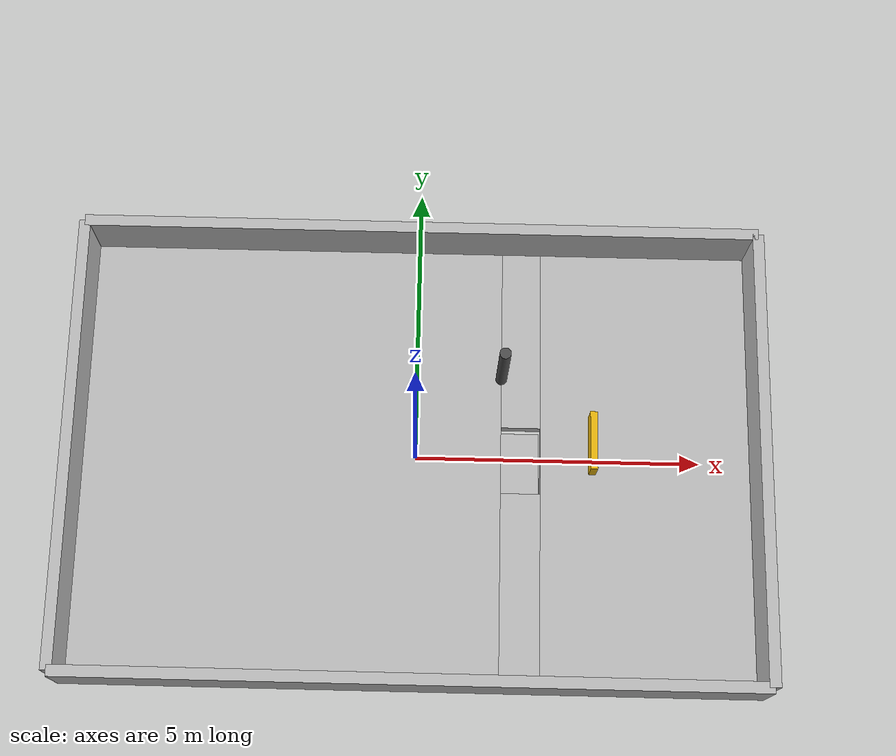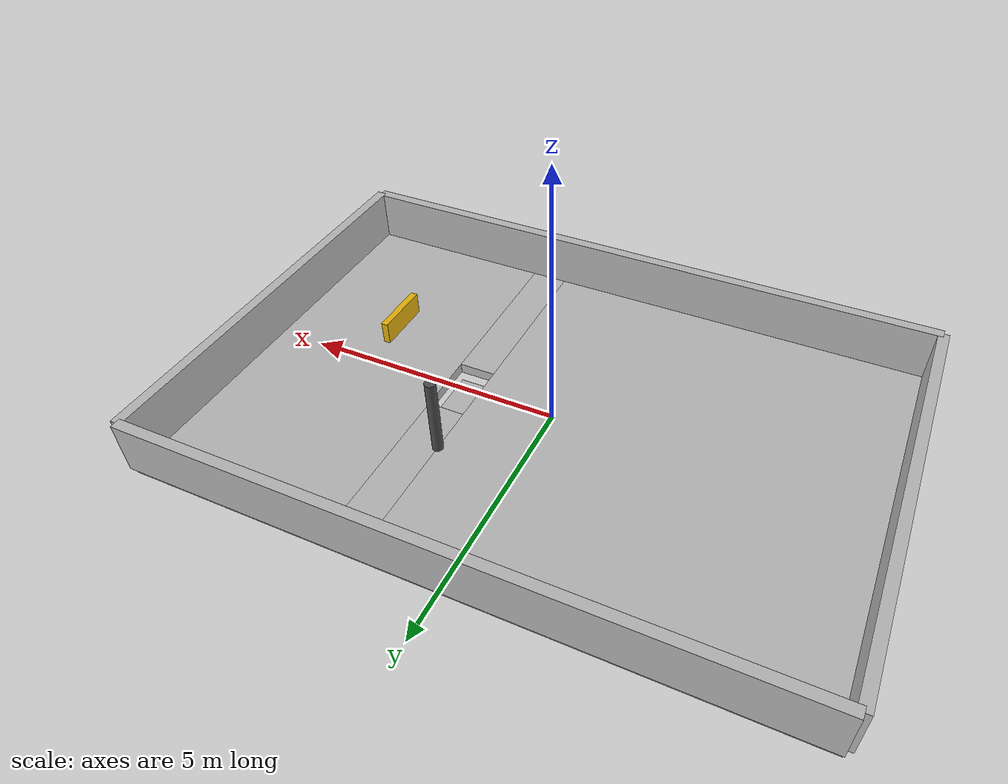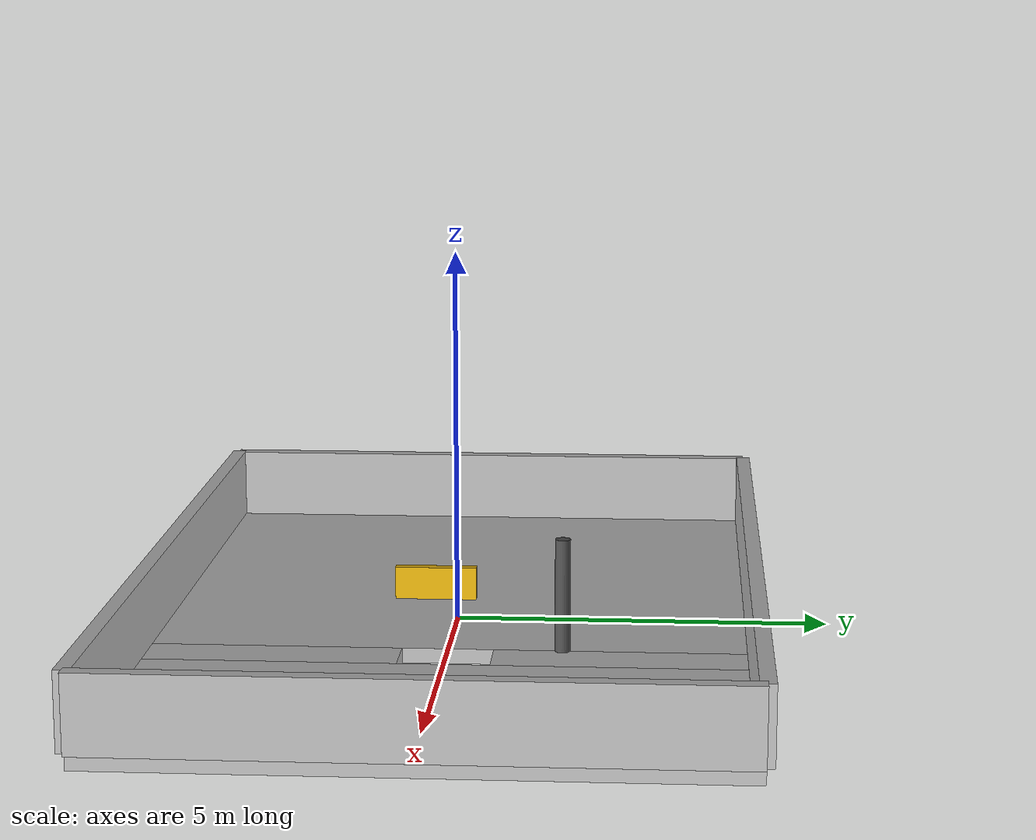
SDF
<?xml version='1.0' encoding='utf-8'?>
<sdf version="1.6"><world name="cenario_navegacao">
  <physics type="ode"><max_step_size>0.001</max_step_size><real_time_update_rate>1000</real_time_update_rate></physics>
  <plugin name="world_state" filename="libgazebo_ros_state.so"><ros><namespace>/gazebo</namespace></ros><update_rate>10</update_rate></plugin>
  <gravity>0 0 -9.81</gravity>
  <scene><ambient>0.5 0.5 0.5 1</ambient><background>0.75 0.85 0.95 1</background><shadows>false</shadows></scene>
  <light name="sun" type="directional"><pose>0 0 10 0 0 0</pose><diffuse>0.8 0.8 0.8 1</diffuse><specular>0.2 0.2 0.2 1</specular><direction>-0.5 0.2 -1</direction><cast_shadows>false</cast_shadows></light>
  <model name="poste"><static>true</static><pose>1.5 1.5 0.75 0 0 0</pose><link name="link">
    <collision name="collision"><geometry><cylinder><radius>0.1</radius><length>1.5</length></cylinder></geometry></collision>
    <visual name="visual"><geometry><cylinder><radius>0.1</radius><length>1.5</length></cylinder></geometry><material><ambient>0.3 0.3 0.3 1</ambient><diffuse>0.3 0.3 0.3 1</diffuse></material></visual>
  </link></model>
  <model name="placa_suspensa"><static>true</static><pose>3 0 1.3 0 0 0</pose><link name="link">
    <collision name="collision"><geometry><box><size>0.12 1.0 0.4</size></box></geometry></collision>
    <visual name="visual"><geometry><box><size>0.12 1.0 0.4</size></box></geometry><material><ambient>0.9 0.7 0.05 1</ambient><diffuse>0.9 0.7 0.05 1</diffuse></material></visual>
  </link></model>
  <gui><camera name="user_camera"><pose>4 -5 3 0 0.4 2.3</pose></camera></gui>
<model name="limite_norte"><static>true</static><pose>0 4 .5 0 0 0</pose><link name="link"><collision name="collision"><geometry><box><size>12 0.2 1</size></box></geometry></collision><visual name="visual"><geometry><box><size>12 0.2 1</size></box></geometry></visual></link></model><model name="limite_sul"><static>true</static><pose>0 -4 .5 0 0 0</pose><link name="link"><collision name="collision"><geometry><box><size>12 0.2 1</size></box></geometry></collision><visual name="visual"><geometry><box><size>12 0.2 1</size></box></geometry></visual></link></model><model name="limite_leste"><static>true</static><pose>6 0 .5 0 0 0</pose><link name="link"><collision name="collision"><geometry><box><size>0.2 8 1</size></box></geometry></collision><visual name="visual"><geometry><box><size>0.2 8 1</size></box></geometry></visual></link></model><model name="limite_oeste"><static>true</static><pose>-6 0 .5 0 0 0</pose><link name="link"><collision name="collision"><geometry><box><size>0.2 8 1</size></box></geometry></collision><visual name="visual"><geometry><box><size>0.2 8 1</size></box></geometry></visual></link></model><model name="piso_esquerdo"><static>true</static><pose>-2.25 0 -0.1 0 0 0</pose><link name="link"><collision name="collision"><geometry><box><size>7.5 8 0.2</size></box></geometry></collision><visual name="visual"><geometry><box><size>7.5 8 0.2</size></box></geometry></visual></link></model><model name="piso_direito"><static>true</static><pose>4.1 0 -0.1 0 0 0</pose><link name="link"><collision name="collision"><geometry><box><size>3.8 8 0.2</size></box></geometry></collision><visual name="visual"><geometry><box><size>3.8 8 0.2</size></box></geometry></visual></link></model><model name="piso_lateral1"><static>true</static><pose>1.85 2.3 -0.1 0 0 0</pose><link name="link"><collision name="collision"><geometry><box><size>0.7 3.4 0.2</size></box></geometry></collision><visual name="visual"><geometry><box><size>0.7 3.4 0.2</size></box></geometry></visual></link></model><model name="piso_lateral2"><static>true</static><pose>1.85 -2.3 -0.1 0 0 0</pose><link name="link"><collision name="collision"><geometry><box><size>0.7 3.4 0.2</size></box></geometry></collision><visual name="visual"><geometry><box><size>0.7 3.4 0.2</size></box></geometry></visual></link></model><model name="fundo_buraco"><static>true</static><pose>1.85 0 -0.5 0 0 0</pose><link name="link"><collision name="collision"><geometry><box><size>0.7 1.2 0.2</size></box></geometry></collision><visual name="visual"><geometry><box><size>0.7 1.2 0.2</size></box></geometry></visual></link></model></world></sdf>
